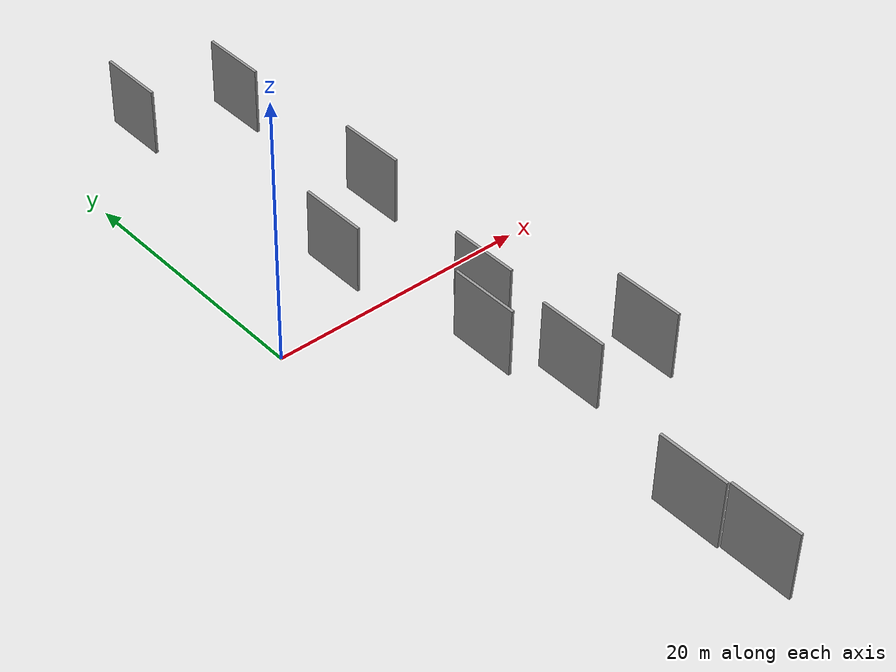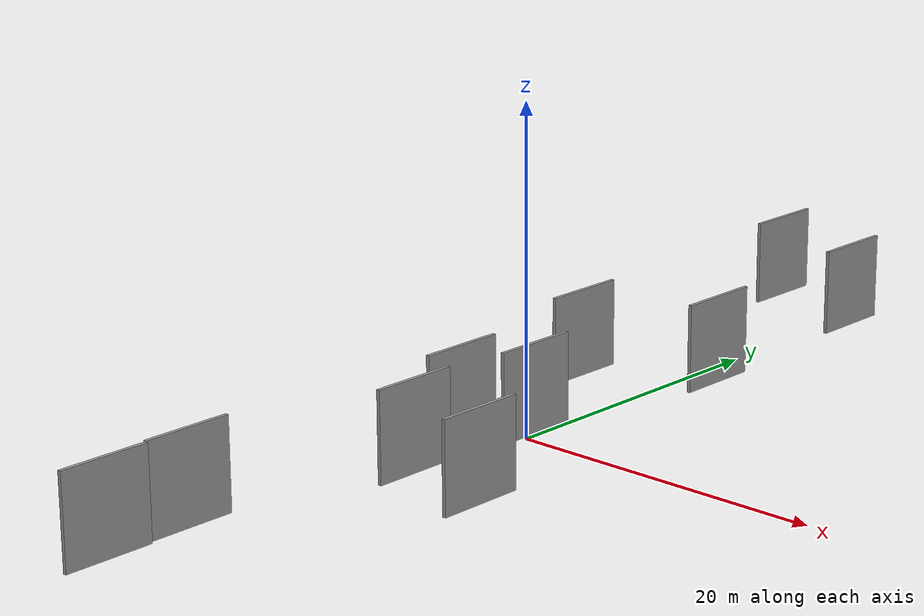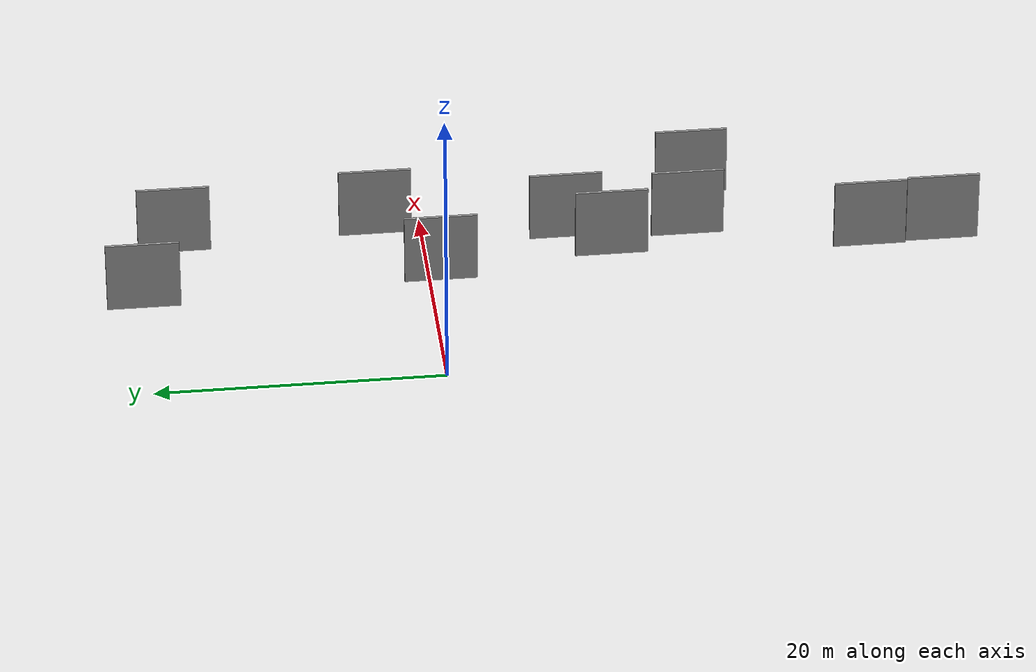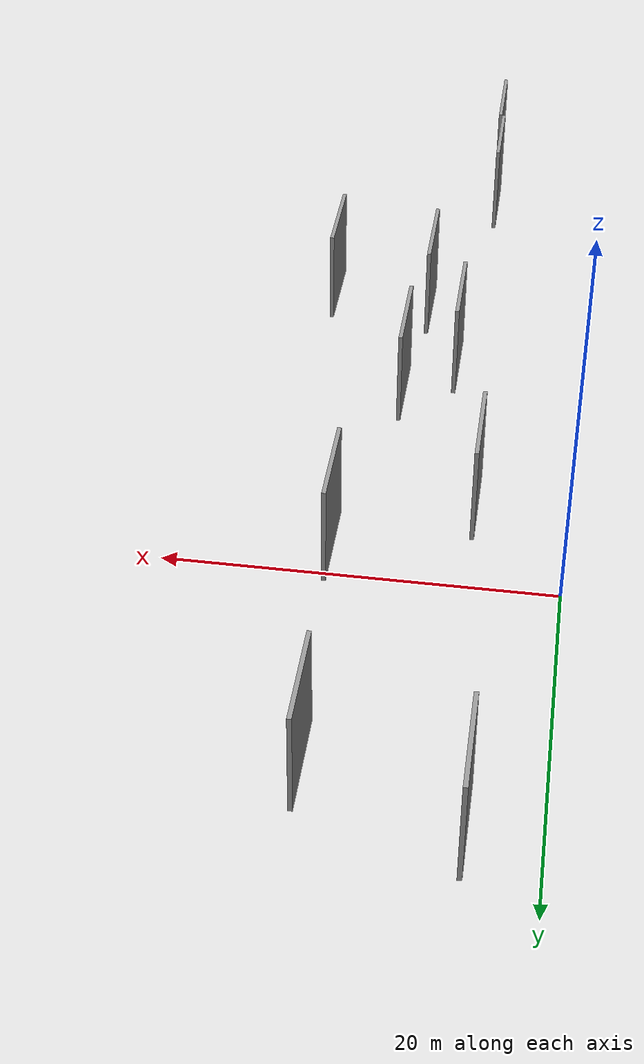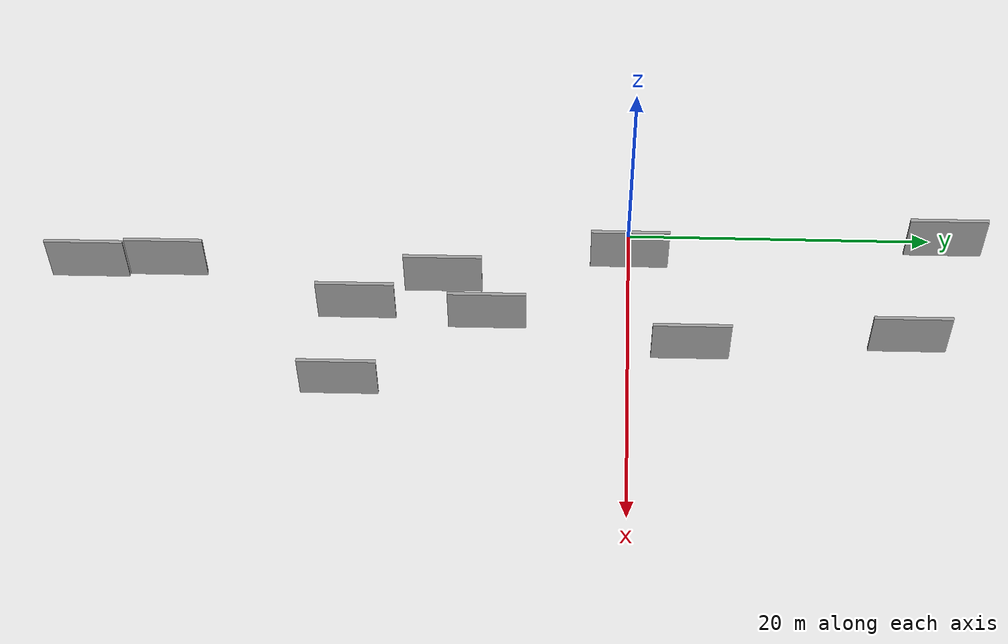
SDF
<sdf version="1.6">
 <world name="default">
  <scene>
   <sky><clouds><speed>12</speed></clouds></sky>
   <ambient>0.4 0.4 0.4 1</ambient>
   <background>0.7 0.7 0.7 1</background>
   <shadows>1</shadows>
  </scene>
  <gravity>0 0 -9.8066</gravity>
  <magnetic_field>6e-06 2.3e-05 -4.2e-05</magnetic_field>
  <physics default="0" name="default_physics" type="ode">
   <ode>
    <solver>
     <type>quick</type>
     <iters>10</iters>
     <sor>1.0</sor>
     <use_dynamic_moi_rescaling>0</use_dynamic_moi_rescaling>
    </solver>
    <constraints>
     <cfm>0</cfm>
     <erp>0.2</erp>
     <contact_max_correcting_vel>100</contact_max_correcting_vel>
     <contact_surface_layer>0.001</contact_surface_layer>
    </constraints>
   </ode>
   <max_step_size>0.004</max_step_size>
   <real_time_factor>1</real_time_factor>
   <real_time_update_rate>250</real_time_update_rate>
  </physics>
  <light name="sun" type="directional">
   <pose>0 0 10 0 0 0</pose>
   <diffuse>0.8 0.8 0.8 1</diffuse>
   <specular>0.2 0.2 0.2 1</specular>
   <attenuation>
    <range>1000</range>
    <constant>0.9</constant>
    <linear>0.01</linear>
    <quadratic>0.001</quadratic>
   </attenuation>
   <direction>-0.5 0.1 -0.9</direction>
  </light>
  <model name="grey_wall_1">
   <static>1</static>
   <pose>4.4120 -0.0864 5.0 0.000000 0.000000 1.570796</pose>
   <link name="link">
    <pose>0 0 2.50 0 0 0</pose>
    <collision name="collision"><geometry><box><size>5.00 0.2 5.00</size></box></geometry></collision>
    <visual name="visual">
     <cast_shadows>0</cast_shadows>
     <geometry><box><size>5.00 0.2 5.00</size></box></geometry>
     <material>
      <script>
       <uri>model://grey_wall/materials/scripts</uri>
       <uri>model://grey_wall/materials/textures</uri>
       <name>vrc/grey_wall</name>
      </script>
     </material>
    </visual>
   </link>
  </model>
  <model name="grey_wall_2">
   <static>1</static>
   <pose>6.3465 -12.0319 5.0 0.000000 0.000000 1.570796</pose>
   <link name="link">
    <pose>0 0 2.50 0 0 0</pose>
    <collision name="collision"><geometry><box><size>5.00 0.2 5.00</size></box></geometry></collision>
    <visual name="visual">
     <cast_shadows>0</cast_shadows>
     <geometry><box><size>5.00 0.2 5.00</size></box></geometry>
     <material>
      <script>
       <uri>model://grey_wall/materials/scripts</uri>
       <uri>model://grey_wall/materials/textures</uri>
       <name>vrc/grey_wall</name>
      </script>
     </material>
    </visual>
   </link>
  </model>
  <model name="grey_wall_3">
   <static>1</static>
   <pose>10.8157 3.8454 5.0 0.000000 0.000000 1.570796</pose>
   <link name="link">
    <pose>0 0 2.50 0 0 0</pose>
    <collision name="collision"><geometry><box><size>5.00 0.2 5.00</size></box></geometry></collision>
    <visual name="visual">
     <cast_shadows>0</cast_shadows>
     <geometry><box><size>5.00 0.2 5.00</size></box></geometry>
     <material>
      <script>
       <uri>model://grey_wall/materials/scripts</uri>
       <uri>model://grey_wall/materials/textures</uri>
       <name>vrc/grey_wall</name>
      </script>
     </material>
    </visual>
   </link>
  </model>
  <model name="grey_wall_4">
   <static>1</static>
   <pose>8.8978 -9.1600 5.0 0.000000 0.000000 1.570796</pose>
   <link name="link">
    <pose>0 0 2.50 0 0 0</pose>
    <collision name="collision"><geometry><box><size>5.00 0.2 5.00</size></box></geometry></collision>
    <visual name="visual">
     <cast_shadows>0</cast_shadows>
     <geometry><box><size>5.00 0.2 5.00</size></box></geometry>
     <material>
      <script>
       <uri>model://grey_wall/materials/scripts</uri>
       <uri>model://grey_wall/materials/textures</uri>
       <name>vrc/grey_wall</name>
      </script>
     </material>
    </visual>
   </link>
  </model>
  <model name="grey_wall_5">
   <static>1</static>
   <pose>8.3293 -17.5417 5.0 0.000000 0.000000 1.570796</pose>
   <link name="link">
    <pose>0 0 2.50 0 0 0</pose>
    <collision name="collision"><geometry><box><size>5.00 0.2 5.00</size></box></geometry></collision>
    <visual name="visual">
     <cast_shadows>0</cast_shadows>
     <geometry><box><size>5.00 0.2 5.00</size></box></geometry>
     <material>
      <script>
       <uri>model://grey_wall/materials/scripts</uri>
       <uri>model://grey_wall/materials/textures</uri>
       <name>vrc/grey_wall</name>
      </script>
     </material>
    </visual>
   </link>
  </model>
  <model name="grey_wall_6">
   <static>1</static>
   <pose>5.5188 -29.8173 5.0 0.000000 0.000000 1.570796</pose>
   <link name="link">
    <pose>0 0 2.50 0 0 0</pose>
    <collision name="collision"><geometry><box><size>5.00 0.2 5.00</size></box></geometry></collision>
    <visual name="visual">
     <cast_shadows>0</cast_shadows>
     <geometry><box><size>5.00 0.2 5.00</size></box></geometry>
     <material>
      <script>
       <uri>model://grey_wall/materials/scripts</uri>
       <uri>model://grey_wall/materials/textures</uri>
       <name>vrc/grey_wall</name>
      </script>
     </material>
    </visual>
   </link>
  </model>
  <model name="grey_wall_7">
   <static>1</static>
   <pose>3.2197 20.2470 5.0 0.000000 0.000000 1.570796</pose>
   <link name="link">
    <pose>0 0 2.50 0 0 0</pose>
    <collision name="collision"><geometry><box><size>5.00 0.2 5.00</size></box></geometry></collision>
    <visual name="visual">
     <cast_shadows>0</cast_shadows>
     <geometry><box><size>5.00 0.2 5.00</size></box></geometry>
     <material>
      <script>
       <uri>model://grey_wall/materials/scripts</uri>
       <uri>model://grey_wall/materials/textures</uri>
       <name>vrc/grey_wall</name>
      </script>
     </material>
    </visual>
   </link>
  </model>
  <model name="grey_wall_8">
   <static>1</static>
   <pose>10.0694 17.7688 5.0 0.000000 0.000000 1.570796</pose>
   <link name="link">
    <pose>0 0 2.50 0 0 0</pose>
    <collision name="collision"><geometry><box><size>5.00 0.2 5.00</size></box></geometry></collision>
    <visual name="visual">
     <cast_shadows>0</cast_shadows>
     <geometry><box><size>5.00 0.2 5.00</size></box></geometry>
     <material>
      <script>
       <uri>model://grey_wall/materials/scripts</uri>
       <uri>model://grey_wall/materials/textures</uri>
       <name>vrc/grey_wall</name>
      </script>
     </material>
    </visual>
   </link>
  </model>
  <model name="grey_wall_9">
   <static>1</static>
   <pose>13.6554 -18.4841 5.0 0.000000 0.000000 1.570796</pose>
   <link name="link">
    <pose>0 0 2.50 0 0 0</pose>
    <collision name="collision"><geometry><box><size>5.00 0.2 5.00</size></box></geometry></collision>
    <visual name="visual">
     <cast_shadows>0</cast_shadows>
     <geometry><box><size>5.00 0.2 5.00</size></box></geometry>
     <material>
      <script>
       <uri>model://grey_wall/materials/scripts</uri>
       <uri>model://grey_wall/materials/textures</uri>
       <name>vrc/grey_wall</name>
      </script>
     </material>
    </visual>
   </link>
  </model>
  <model name="grey_wall_10">
   <static>1</static>
   <pose>5.7107 -34.8681 5.0 0.000000 0.000000 1.570796</pose>
   <link name="link">
    <pose>0 0 2.50 0 0 0</pose>
    <collision name="collision"><geometry><box><size>5.00 0.2 5.00</size></box></geometry></collision>
    <visual name="visual">
     <cast_shadows>0</cast_shadows>
     <geometry><box><size>5.00 0.2 5.00</size></box></geometry>
     <material>
      <script>
       <uri>model://grey_wall/materials/scripts</uri>
       <uri>model://grey_wall/materials/textures</uri>
       <name>vrc/grey_wall</name>
      </script>
     </material>
    </visual>
   </link>
  </model>
 </world>
</sdf>
